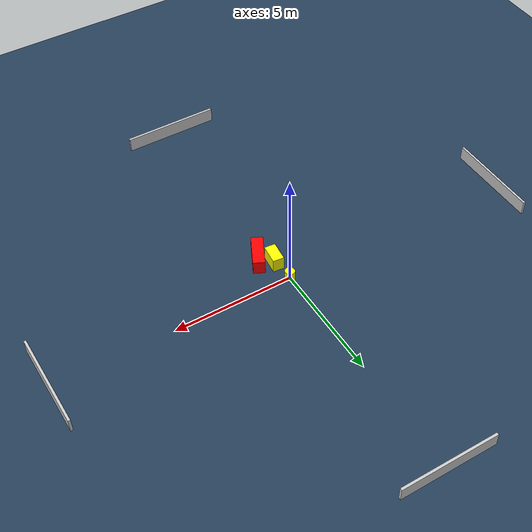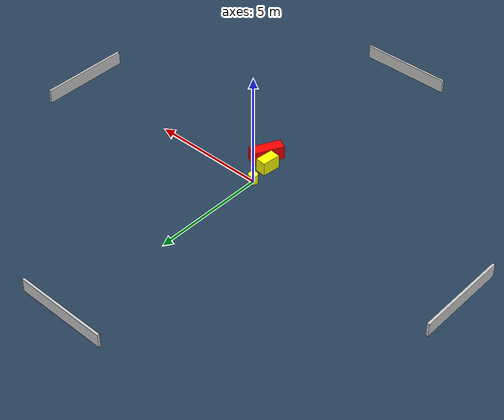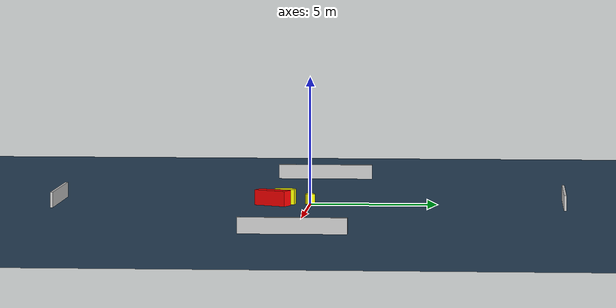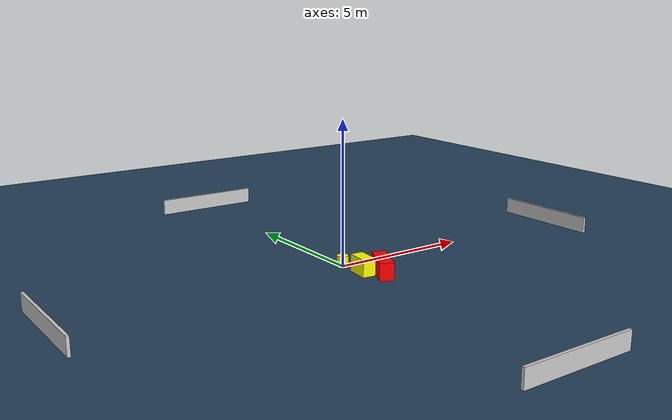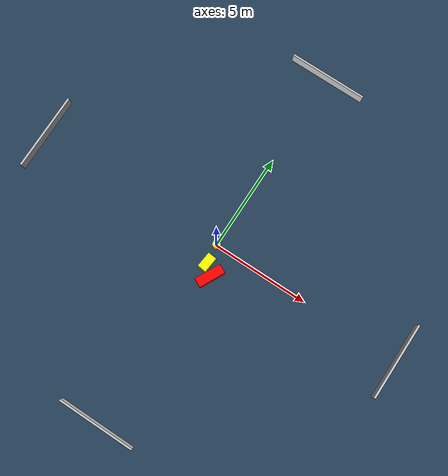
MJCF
<?xml version="1.0" ?>
<mujoco model="generated_environment">
  <option timestep="0.01" integrator="RK4" cone="elliptic"/>
  <default>
    <geom density="1"/>
  </default>
  <asset>
    <texture builtin="gradient" height="3072" name="skybox" rgb1="0.3 0.5 0.7" rgb2="0 0 0" type="skybox" width="512"/>
    <texture builtin="checker" height="300" name="groundplane" rgb1="0.2 0.3 0.4" rgb2="0.1 0.2 0.3" type="2d" width="300"/>
    <material name="groundplane" reflectance="0.2" texrepeat="5 5" texture="groundplane"/>
  </asset>
  <worldbody>
    <light dir="0 0 -1" directional="true" pos="0 0 1.5"/>
    <geom condim="3" friction="0.5 0.005 0.001" material="groundplane" name="floor" pos="0 0 0" size="0 0 0.05" type="plane"/>
    <body name="walls">
      <geom name="wall_1" condim="4" pos="-10.0 0.0 0.3" rgba="0.800000011920929 0.800000011920929 0.800000011920929 1.0" size="0.05 2.0 0.3" type="box"/>
      <geom name="wall_2" condim="4" pos="10.0 0.0 0.3" rgba="0.800000011920929 0.800000011920929 0.800000011920929 1.0" size="0.05 2.0 0.3" type="box"/>
      <geom name="wall_3" condim="4" pos="0.0 -10.0 0.3" rgba="0.800000011920929 0.800000011920929 0.800000011920929 1.0" size="2.0 0.05 0.3" type="box"/>
      <geom name="wall_4" condim="4" pos="0.0 10.0 0.3" rgba="0.800000011920929 0.800000011920929 0.800000011920929 1.0" size="2.0 0.05 0.3" type="box"/>
    </body>
    <body name="robot">
      <joint name="joint_x" type="slide" pos="0 0 0" axis="1 0 0"/>
      <joint name="joint_y" type="slide" pos="0 0 0" axis="0 1 0"/>
      <geom name="robot" type="cylinder" pos="0.0 0.0 0.2" size="0.2 0.2 0.0" mass="5.0" friction="1.0 0.005 0.0001" condim="4" rgba="1.0 1.0 0.0 1.0"/>
    </body>
    <body name="obstacle_1_movable">
      <geom name="obstacle_1_movable" condim="4" pos="0.11747679601600373 -0.9863580851049513 0.3" euler="0 0 174.03051101058344" friction="0.0 0.005 0.001" rgba="1.0 1.0 0.0 1.0" size="0.23003996817465433 0.40669787048074785 0.3" type="box" mass="0.1"/>
      <joint type="free"/>
    </body>
    <body name="obstacle_2_static">
      <geom name="obstacle_2_static" condim="4" pos="0.5808808404091839 -1.4500036732484836 0.3" euler="0 0 153.29866285512523" friction="0.0 0.005 0.001" rgba="1.0 0.0 0.0 1.0" size="0.24191960751588387 0.6865829378586055 0.3" type="box"/>
    </body>
  </worldbody>
  <actuator>
    <motor name="actuator_x" joint="joint_x" gear="1" ctrlrange="-1 1"/>
    <motor name="actuator_y" joint="joint_y" gear="1" ctrlrange="-1 1"/>
  </actuator>
</mujoco>
